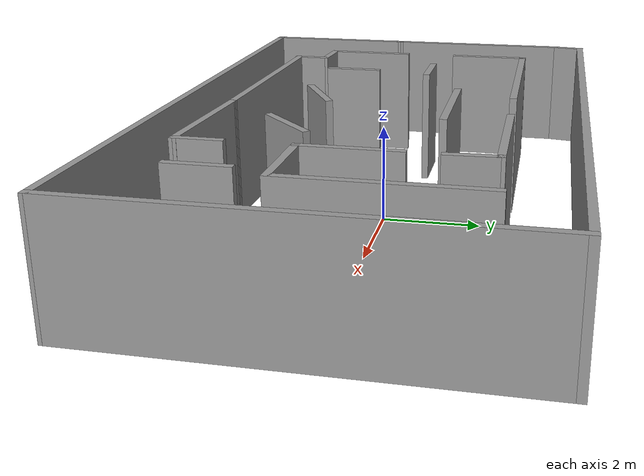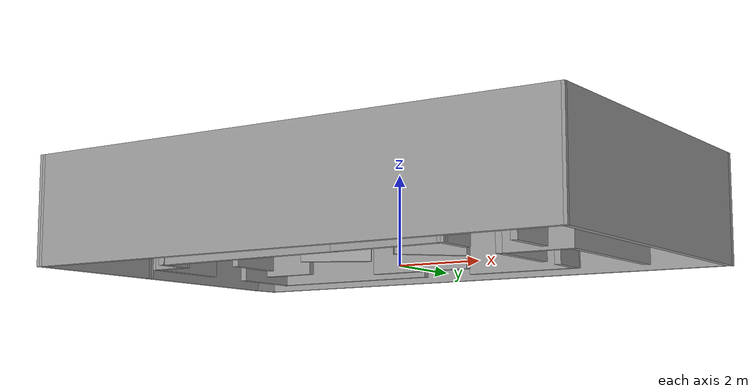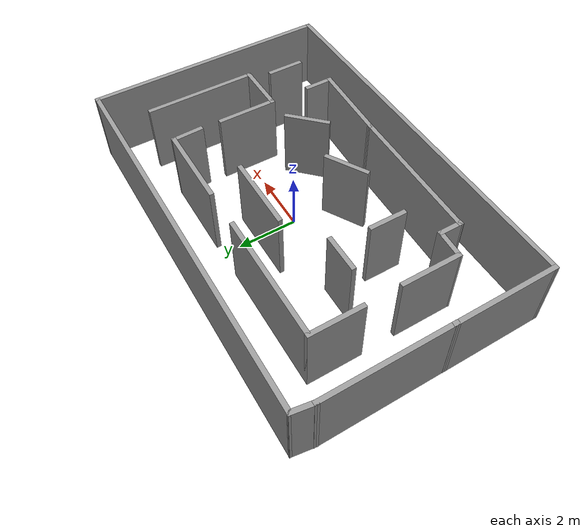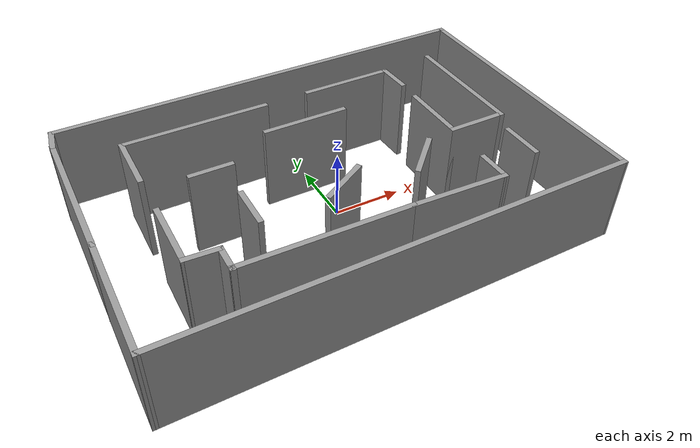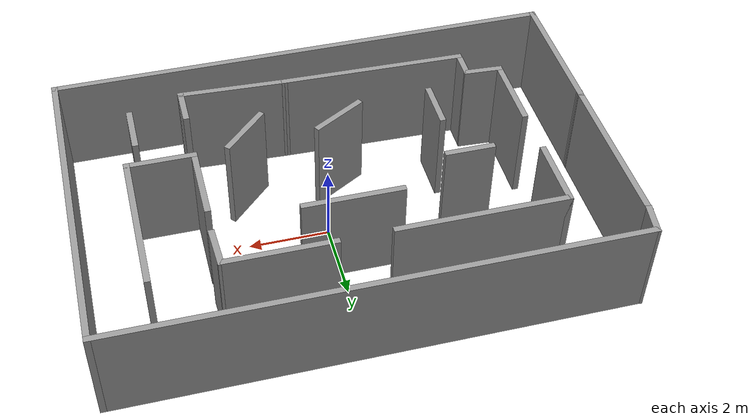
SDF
<?xml version='1.0'?>
<sdf version='1.6'>
  <model name='lab_2_world'>
    <pose frame=''>-0.324804 -0.12175 0 0 -0 0</pose>
    <link name='Wall_0'>
      <collision name='Wall_0_Collision'>
        <geometry>
          <box>
            <size>4.73028 0.15 2.5</size>
          </box>
        </geometry>
        <pose frame=''>0 0 1.25 0 -0 0</pose>
      </collision>
      <visual name='Wall_0_Visual'>
        <pose frame=''>0 0 1.25 0 -0 0</pose>
        <geometry>
          <box>
            <size>4.73028 0.15 2.5</size>
          </box>
        </geometry>
        <material>
          <script>
            <uri>file://media/materials/scripts/gazebo.material</uri>
            <name>Gazebo/Grey</name>
          </script>
          <ambient>1 1 1 1</ambient>
        </material>
        <meta>
          <layer>0</layer>
        </meta>
      </visual>
      <pose frame=''>-1.57514 -2.8866 0 0 -0 3.11964</pose>
    </link>
    <link name='Wall_1'>
      <collision name='Wall_1_Collision'>
        <geometry>
          <box>
            <size>0.818978 0.15 2.5</size>
          </box>
        </geometry>
        <pose frame=''>0 0 1.25 0 -0 0</pose>
      </collision>
      <visual name='Wall_1_Visual'>
        <pose frame=''>0 0 1.25 0 -0 0</pose>
        <geometry>
          <box>
            <size>0.818978 0.15 2.5</size>
          </box>
        </geometry>
        <material>
          <script>
            <uri>file://media/materials/scripts/gazebo.material</uri>
            <name>Gazebo/Grey</name>
          </script>
          <ambient>1 1 1 1</ambient>
        </material>
        <meta>
          <layer>0</layer>
        </meta>
      </visual>
      <pose frame=''>-3.86508 -2.52194 0 0 -0 1.5708</pose>
    </link>
    <link name='Wall_11'>
      <collision name='Wall_11_Collision'>
        <geometry>
          <box>
            <size>2 0.15 2.5</size>
          </box>
        </geometry>
        <pose frame=''>0 0 1.25 0 -0 0</pose>
      </collision>
      <visual name='Wall_11_Visual'>
        <pose frame=''>0 0 1.25 0 -0 0</pose>
        <geometry>
          <box>
            <size>2 0.15 2.5</size>
          </box>
        </geometry>
        <material>
          <script>
            <uri>file://media/materials/scripts/gazebo.material</uri>
            <name>Gazebo/Grey</name>
          </script>
          <ambient>1 1 1 1</ambient>
        </material>
        <meta>
          <layer>0</layer>
        </meta>
      </visual>
      <pose frame=''>3.34989 0.096451 0 0 0 -1.5708</pose>
    </link>
    <link name='Wall_12'>
      <collision name='Wall_12_Collision'>
        <geometry>
          <box>
            <size>1.75 0.15 2.5</size>
          </box>
        </geometry>
        <pose frame=''>0 0 1.25 0 -0 0</pose>
      </collision>
      <visual name='Wall_12_Visual'>
        <pose frame=''>0 0 1.25 0 -0 0</pose>
        <geometry>
          <box>
            <size>1.75 0.15 2.5</size>
          </box>
        </geometry>
        <material>
          <script>
            <uri>file://media/materials/scripts/gazebo.material</uri>
            <name>Gazebo/Grey</name>
          </script>
          <ambient>1 1 1 1</ambient>
        </material>
        <meta>
          <layer>0</layer>
        </meta>
      </visual>
      <pose frame=''>4.14989 -0.828549 0 0 -0 0</pose>
    </link>
    <link name='Wall_13'>
      <collision name='Wall_13_Collision'>
        <geometry>
          <box>
            <size>3.75 0.15 2.5</size>
          </box>
        </geometry>
        <pose frame=''>0 0 1.25 0 -0 0</pose>
      </collision>
      <visual name='Wall_13_Visual'>
        <pose frame=''>0 0 1.25 0 -0 0</pose>
        <geometry>
          <box>
            <size>3.75 0.15 2.5</size>
          </box>
        </geometry>
        <material>
          <script>
            <uri>file://media/materials/scripts/gazebo.material</uri>
            <name>Gazebo/Grey</name>
          </script>
          <ambient>1 1 1 1</ambient>
        </material>
        <meta>
          <layer>0</layer>
        </meta>
      </visual>
      <pose frame=''>4.94989 0.971451 0 0 -0 1.5708</pose>
    </link>
    <link name='Wall_15'>
      <collision name='Wall_15_Collision'>
        <geometry>
          <box>
            <size>1.00864 0.15 2.5</size>
          </box>
        </geometry>
        <pose frame=''>0 0 1.25 0 -0 0</pose>
      </collision>
      <visual name='Wall_15_Visual'>
        <pose frame=''>0 0 1.25 0 -0 0</pose>
        <geometry>
          <box>
            <size>1.00864 0.15 2.5</size>
          </box>
        </geometry>
        <material>
          <script>
            <uri>file://media/materials/scripts/gazebo.material</uri>
            <name>Gazebo/Grey</name>
          </script>
          <ambient>1 1 1 1</ambient>
        </material>
        <meta>
          <layer>0</layer>
        </meta>
      </visual>
      <pose frame=''>3.32978 -2.62604 0 0 0 -1.5708</pose>
    </link>
    <link name='Wall_16'>
      <collision name='Wall_16_Collision'>
        <geometry>
          <box>
            <size>2.76765 0.15 2.5</size>
          </box>
        </geometry>
        <pose frame=''>0 0 1.25 0 -0 0</pose>
      </collision>
      <visual name='Wall_16_Visual'>
        <pose frame=''>0 0 1.25 0 -0 0</pose>
        <geometry>
          <box>
            <size>2.76765 0.15 2.5</size>
          </box>
        </geometry>
        <material>
          <script>
            <uri>file://media/materials/scripts/gazebo.material</uri>
            <name>Gazebo/Grey</name>
          </script>
          <ambient>1 1 1 1</ambient>
        </material>
        <meta>
          <layer>0</layer>
        </meta>
      </visual>
      <pose frame=''>2.02229 -2.99612 0 0 -0 3.09632</pose>
    </link>
    <link name='Wall_18'>
      <collision name='Wall_18_Collision'>
        <geometry>
          <box>
            <size>1.25 0.15 2.5</size>
          </box>
        </geometry>
        <pose frame=''>0 0 1.25 0 -0 0</pose>
      </collision>
      <visual name='Wall_18_Visual'>
        <pose frame=''>0 0 1.25 0 -0 0</pose>
        <geometry>
          <box>
            <size>1.25 0.15 2.5</size>
          </box>
        </geometry>
        <material>
          <script>
            <uri>file://media/materials/scripts/gazebo.material</uri>
            <name>Gazebo/Grey</name>
          </script>
          <ambient>1 1 1 1</ambient>
        </material>
        <meta>
          <layer>0</layer>
        </meta>
      </visual>
      <pose frame=''>4.65727 -2.08297 0 0 0 -1.5708</pose>
    </link>
    <link name='Wall_2'>
      <collision name='Wall_2_Collision'>
        <geometry>
          <box>
            <size>1.0014 0.15 2.5</size>
          </box>
        </geometry>
        <pose frame=''>0 0 1.25 0 -0 0</pose>
      </collision>
      <visual name='Wall_2_Visual'>
        <pose frame=''>0 0 1.25 0 -0 0</pose>
        <geometry>
          <box>
            <size>1.0014 0.15 2.5</size>
          </box>
        </geometry>
        <material>
          <script>
            <uri>file://media/materials/scripts/gazebo.material</uri>
            <name>Gazebo/Grey</name>
          </script>
          <ambient>1 1 1 1</ambient>
        </material>
        <meta>
          <layer>0</layer>
        </meta>
      </visual>
      <pose frame=''>-4.29008 -2.14291 0 0 -0 3.08417</pose>
    </link>
    <link name='Wall_20'>
      <collision name='Wall_20_Collision'>
        <geometry>
          <box>
            <size>4.25 0.15 2.5</size>
          </box>
        </geometry>
        <pose frame=''>0 0 1.25 0 -0 0</pose>
      </collision>
      <visual name='Wall_20_Visual'>
        <pose frame=''>0 0 1.25 0 -0 0</pose>
        <geometry>
          <box>
            <size>4.25 0.15 2.5</size>
          </box>
        </geometry>
        <material>
          <script>
            <uri>file://media/materials/scripts/gazebo.material</uri>
            <name>Gazebo/Grey</name>
          </script>
          <ambient>1 1 1 1</ambient>
        </material>
        <meta>
          <layer>0</layer>
        </meta>
      </visual>
      <pose frame=''>-6.34485 1.36497 0 0 0 -1.5708</pose>
    </link>
    <link name='Wall_21'>
      <collision name='Wall_21_Collision'>
        <geometry>
          <box>
            <size>0.190371 0.15 2.5</size>
          </box>
        </geometry>
        <pose frame=''>0 0 1.25 0 -0 0</pose>
      </collision>
      <visual name='Wall_21_Visual'>
        <pose frame=''>0 0 1.25 0 -0 0</pose>
        <geometry>
          <box>
            <size>0.190371 0.15 2.5</size>
          </box>
        </geometry>
        <material>
          <script>
            <uri>file://media/materials/scripts/gazebo.material</uri>
            <name>Gazebo/Grey</name>
          </script>
          <ambient>1 1 1 1</ambient>
        </material>
        <meta>
          <layer>0</layer>
        </meta>
      </visual>
      <pose frame=''>-6.34656 -0.705148 0 0 0 -1.65529</pose>
    </link>
    <link name='Wall_22'>
      <collision name='Wall_22_Collision'>
        <geometry>
          <box>
            <size>3.5 0.15 2.5</size>
          </box>
        </geometry>
        <pose frame=''>0 0 1.25 0 -0 0</pose>
      </collision>
      <visual name='Wall_22_Visual'>
        <pose frame=''>0 0 1.25 0 -0 0</pose>
        <geometry>
          <box>
            <size>3.5 0.15 2.5</size>
          </box>
        </geometry>
        <material>
          <script>
            <uri>file://media/materials/scripts/gazebo.material</uri>
            <name>Gazebo/Grey</name>
          </script>
          <ambient>1 1 1 1</ambient>
        </material>
        <meta>
          <layer>0</layer>
        </meta>
      </visual>
      <pose frame=''>-6.34826 -2.40026 0 0 0 -1.5708</pose>
    </link>
    <link name='Wall_23'>
      <collision name='Wall_23_Collision'>
        <geometry>
          <box>
            <size>12.8535 0.15 2.5</size>
          </box>
        </geometry>
        <pose frame=''>0 0 1.25 0 -0 0</pose>
      </collision>
      <visual name='Wall_23_Visual'>
        <pose frame=''>0 0 1.25 0 -0 0</pose>
        <geometry>
          <box>
            <size>12.8535 0.15 2.5</size>
          </box>
        </geometry>
        <material>
          <script>
            <uri>file://media/materials/scripts/gazebo.material</uri>
            <name>Gazebo/Grey</name>
          </script>
          <ambient>1 1 1 1</ambient>
        </material>
        <meta>
          <layer>0</layer>
        </meta>
      </visual>
      <pose frame=''>0.003444 -4.05515 0 0 -0 0.003167</pose>
    </link>
    <link name='Wall_24'>
      <collision name='Wall_24_Collision'>
        <geometry>
          <box>
            <size>8.25 0.15 2.5</size>
          </box>
        </geometry>
        <pose frame=''>0 0 1.25 0 -0 0</pose>
      </collision>
      <visual name='Wall_24_Visual'>
        <pose frame=''>0 0 1.25 0 -0 0</pose>
        <geometry>
          <box>
            <size>8.25 0.15 2.5</size>
          </box>
        </geometry>
        <material>
          <script>
            <uri>file://media/materials/scripts/gazebo.material</uri>
            <name>Gazebo/Grey</name>
          </script>
          <ambient>1 1 1 1</ambient>
        </material>
        <meta>
          <layer>0</layer>
        </meta>
      </visual>
      <pose frame=''>6.35515 0.014966 0 0 -0 1.5708</pose>
    </link>
    <link name='Wall_25'>
      <collision name='Wall_25_Collision'>
        <geometry>
          <box>
            <size>12.75 0.15 2.5</size>
          </box>
        </geometry>
        <pose frame=''>0 0 1.25 0 -0 0</pose>
      </collision>
      <visual name='Wall_25_Visual'>
        <pose frame=''>0 0 1.25 0 -0 0</pose>
        <geometry>
          <box>
            <size>12.75 0.15 2.5</size>
          </box>
        </geometry>
        <material>
          <script>
            <uri>file://media/materials/scripts/gazebo.material</uri>
            <name>Gazebo/Grey</name>
          </script>
          <ambient>1 1 1 1</ambient>
        </material>
        <meta>
          <layer>0</layer>
        </meta>
      </visual>
      <pose frame=''>0.055148 4.06497 0 0 -0 3.14159</pose>
    </link>
    <link name='Wall_26'>
      <collision name='Wall_26_Collision'>
        <geometry>
          <box>
            <size>0.807647 0.15 2.5</size>
          </box>
        </geometry>
        <pose frame=''>0 0 1.25 0 -0 0</pose>
      </collision>
      <visual name='Wall_26_Visual'>
        <pose frame=''>0 0 1.25 0 -0 0</pose>
        <geometry>
          <box>
            <size>0.807647 0.15 2.5</size>
          </box>
        </geometry>
        <material>
          <script>
            <uri>file://media/materials/scripts/gazebo.material</uri>
            <name>Gazebo/Grey</name>
          </script>
          <ambient>1 1 1 1</ambient>
        </material>
        <meta>
          <layer>0</layer>
        </meta>
      </visual>
      <pose frame=''>-6.29485 3.73997 0 0 0 -1.72345</pose>
    </link>
    <link name='Wall_28'>
      <collision name='Wall_28_Collision'>
        <geometry>
          <box>
            <size>1.25 0.15 2.5</size>
          </box>
        </geometry>
        <pose frame=''>0 0 1.25 0 -0 0</pose>
      </collision>
      <visual name='Wall_28_Visual'>
        <pose frame=''>0 0 1.25 0 -0 0</pose>
        <geometry>
          <box>
            <size>1.25 0.15 2.5</size>
          </box>
        </geometry>
        <material>
          <script>
            <uri>file://media/materials/scripts/gazebo.material</uri>
            <name>Gazebo/Grey</name>
          </script>
          <ambient>1 1 1 1</ambient>
        </material>
        <meta>
          <layer>0</layer>
        </meta>
      </visual>
      <pose frame=''>-3.03929 0.578952 0 0 -0 0</pose>
    </link>
    <link name='Wall_3'>
      <collision name='Wall_3_Collision'>
        <geometry>
          <box>
            <size>2 0.15 2.5</size>
          </box>
        </geometry>
        <pose frame=''>0 0 1.25 0 -0 0</pose>
      </collision>
      <visual name='Wall_3_Visual'>
        <pose frame=''>0 0 1.25 0 -0 0</pose>
        <geometry>
          <box>
            <size>2 0.15 2.5</size>
          </box>
        </geometry>
        <material>
          <script>
            <uri>file://media/materials/scripts/gazebo.material</uri>
            <name>Gazebo/Grey</name>
          </script>
          <ambient>1 1 1 1</ambient>
        </material>
        <meta>
          <layer>0</layer>
        </meta>
      </visual>
      <pose frame=''>-4.71508 -1.19348 0 0 -0 1.5708</pose>
    </link>
    <link name='Wall_30'>
      <collision name='Wall_30_Collision'>
        <geometry>
          <box>
            <size>2.5 0.15 2.5</size>
          </box>
        </geometry>
        <pose frame=''>0 0 1.25 0 -0 0</pose>
      </collision>
      <visual name='Wall_30_Visual'>
        <pose frame=''>0 0 1.25 0 -0 0</pose>
        <geometry>
          <box>
            <size>2.5 0.15 2.5</size>
          </box>
        </geometry>
        <material>
          <script>
            <uri>file://media/materials/scripts/gazebo.material</uri>
            <name>Gazebo/Grey</name>
          </script>
          <ambient>1 1 1 1</ambient>
        </material>
        <meta>
          <layer>0</layer>
        </meta>
      </visual>
      <pose frame=''>0.039563 1.44384 0 0 -0 0</pose>
    </link>
    <link name='Wall_32'>
      <collision name='Wall_32_Collision'>
        <geometry>
          <box>
            <size>1.5 0.15 2.5</size>
          </box>
        </geometry>
        <pose frame=''>0 0 1.25 0 -0 0</pose>
      </collision>
      <visual name='Wall_32_Visual'>
        <pose frame=''>0 0 1.25 0 -0 0</pose>
        <geometry>
          <box>
            <size>1.5 0.15 2.5</size>
          </box>
        </geometry>
        <material>
          <script>
            <uri>file://media/materials/scripts/gazebo.material</uri>
            <name>Gazebo/Grey</name>
          </script>
          <ambient>1 1 1 1</ambient>
        </material>
        <meta>
          <layer>0</layer>
        </meta>
      </visual>
      <pose frame=''>2.02782 -1.38675 0 0 0 -2.35619</pose>
    </link>
    <link name='Wall_34'>
      <collision name='Wall_34_Collision'>
        <geometry>
          <box>
            <size>1.25 0.15 2.5</size>
          </box>
        </geometry>
        <pose frame=''>0 0 1.25 0 -0 0</pose>
      </collision>
      <visual name='Wall_34_Visual'>
        <pose frame=''>0 0 1.25 0 -0 0</pose>
        <geometry>
          <box>
            <size>1.25 0.15 2.5</size>
          </box>
        </geometry>
        <material>
          <script>
            <uri>file://media/materials/scripts/gazebo.material</uri>
            <name>Gazebo/Grey</name>
          </script>
          <ambient>1 1 1 1</ambient>
        </material>
        <meta>
          <layer>0</layer>
        </meta>
      </visual>
      <pose frame=''>-2.72441 -1.17786 0 0 0 -1.5708</pose>
    </link>
    <link name='Wall_36'>
      <collision name='Wall_36_Collision'>
        <geometry>
          <box>
            <size>1.5 0.15 2.5</size>
          </box>
        </geometry>
        <pose frame=''>0 0 1.25 0 -0 0</pose>
      </collision>
      <visual name='Wall_36_Visual'>
        <pose frame=''>0 0 1.25 0 -0 0</pose>
        <geometry>
          <box>
            <size>1.5 0.15 2.5</size>
          </box>
        </geometry>
        <material>
          <script>
            <uri>file://media/materials/scripts/gazebo.material</uri>
            <name>Gazebo/Grey</name>
          </script>
          <ambient>1 1 1 1</ambient>
        </material>
        <meta>
          <layer>0</layer>
        </meta>
      </visual>
      <pose frame=''>-0.309507 -1.3765 0 0 -0 0.523599</pose>
    </link>
    <link name='Wall_5'>
      <collision name='Wall_5_Collision'>
        <geometry>
          <box>
            <size>1.79886 0.15 2.5</size>
          </box>
        </geometry>
        <pose frame=''>0 0 1.25 0 -0 0</pose>
      </collision>
      <visual name='Wall_5_Visual'>
        <pose frame=''>0 0 1.25 0 -0 0</pose>
        <geometry>
          <box>
            <size>1.79886 0.15 2.5</size>
          </box>
        </geometry>
        <material>
          <script>
            <uri>file://media/materials/scripts/gazebo.material</uri>
            <name>Gazebo/Grey</name>
          </script>
          <ambient>1 1 1 1</ambient>
        </material>
        <meta>
          <layer>0</layer>
        </meta>
      </visual>
      <pose frame=''>-4.73577 1.82577 0 0 -0 1.5708</pose>
    </link>
    <link name='Wall_6'>
      <collision name='Wall_6_Collision'>
        <geometry>
          <box>
            <size>4.25 0.15 2.5</size>
          </box>
        </geometry>
        <pose frame=''>0 0 1.25 0 -0 0</pose>
      </collision>
      <visual name='Wall_6_Visual'>
        <pose frame=''>0 0 1.25 0 -0 0</pose>
        <geometry>
          <box>
            <size>4.25 0.15 2.5</size>
          </box>
        </geometry>
        <material>
          <script>
            <uri>file://media/materials/scripts/gazebo.material</uri>
            <name>Gazebo/Grey</name>
          </script>
          <ambient>1 1 1 1</ambient>
        </material>
        <meta>
          <layer>0</layer>
        </meta>
      </visual>
      <pose frame=''>-2.68577 2.6502 0 0 -0 0</pose>
    </link>
    <link name='Wall_8'>
      <collision name='Wall_8_Collision'>
        <geometry>
          <box>
            <size>2.75 0.15 2.5</size>
          </box>
        </geometry>
        <pose frame=''>0 0 1.25 0 -0 0</pose>
      </collision>
      <visual name='Wall_8_Visual'>
        <pose frame=''>0 0 1.25 0 -0 0</pose>
        <geometry>
          <box>
            <size>2.75 0.15 2.5</size>
          </box>
        </geometry>
        <material>
          <script>
            <uri>file://media/materials/scripts/gazebo.material</uri>
            <name>Gazebo/Grey</name>
          </script>
          <ambient>1 1 1 1</ambient>
        </material>
        <meta>
          <layer>0</layer>
        </meta>
      </visual>
      <pose frame=''>2.03512 2.67076 0 0 -0 0</pose>
    </link>
    <link name='Wall_9'>
      <collision name='Wall_9_Collision'>
        <geometry>
          <box>
            <size>1.06986 0.15 2.5</size>
          </box>
        </geometry>
        <pose frame=''>0 0 1.25 0 -0 0</pose>
      </collision>
      <visual name='Wall_9_Visual'>
        <pose frame=''>0 0 1.25 0 -0 0</pose>
        <geometry>
          <box>
            <size>1.06986 0.15 2.5</size>
          </box>
        </geometry>
        <material>
          <script>
            <uri>file://media/materials/scripts/gazebo.material</uri>
            <name>Gazebo/Grey</name>
          </script>
          <ambient>1 1 1 1</ambient>
        </material>
        <meta>
          <layer>0</layer>
        </meta>
      </visual>
      <pose frame=''>3.35524 2.21128 0 0 0 -1.52705</pose>
    </link>
    <static>1</static>
  </model>
</sdf>
